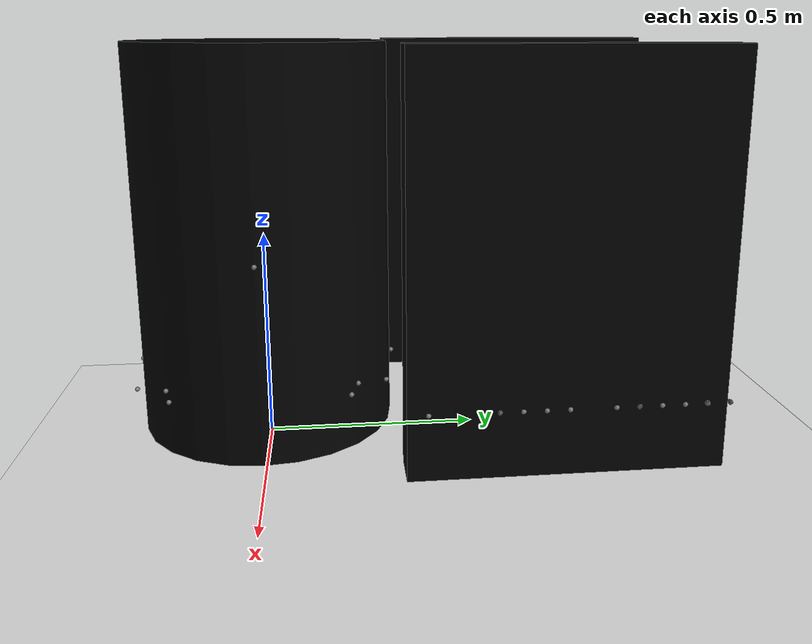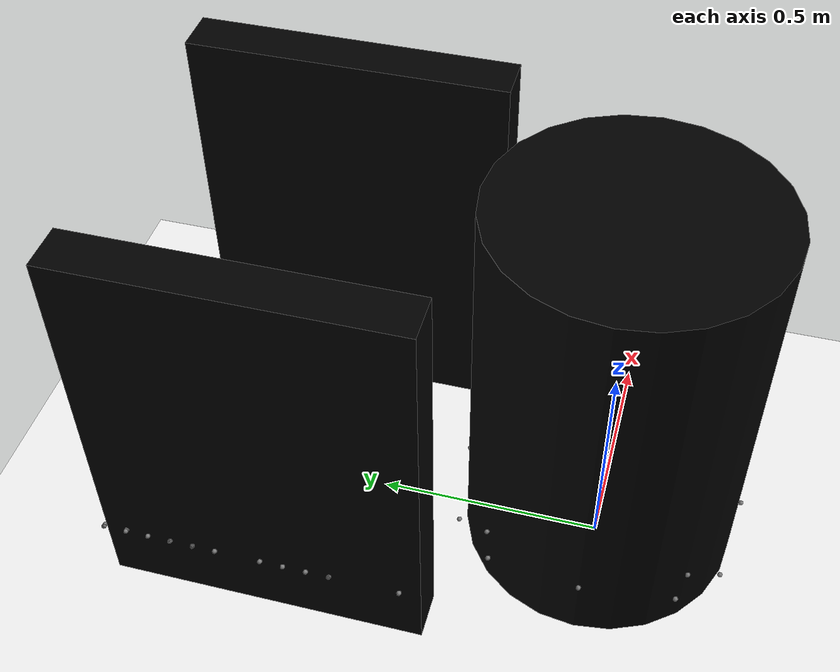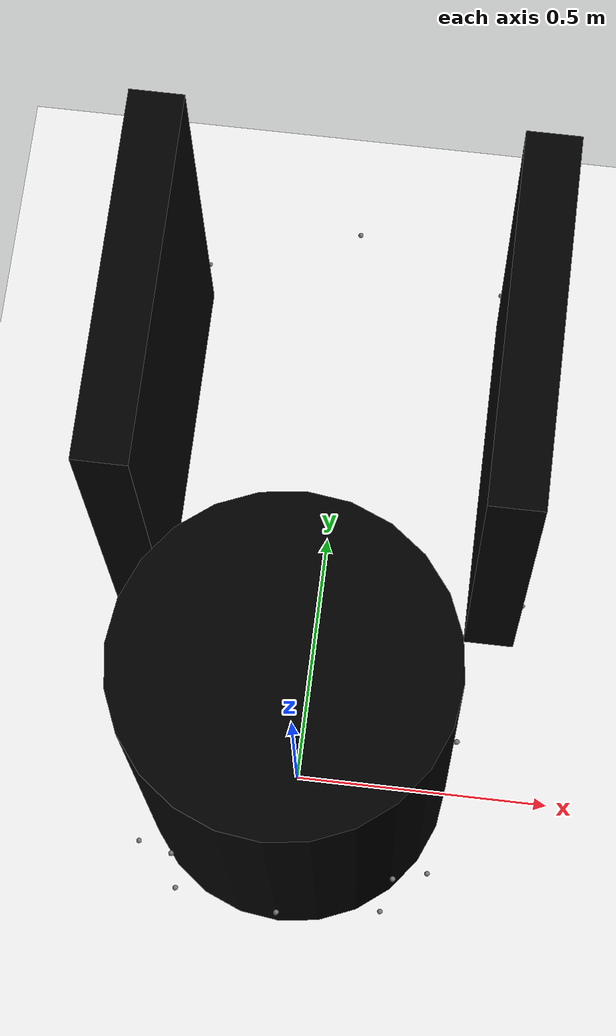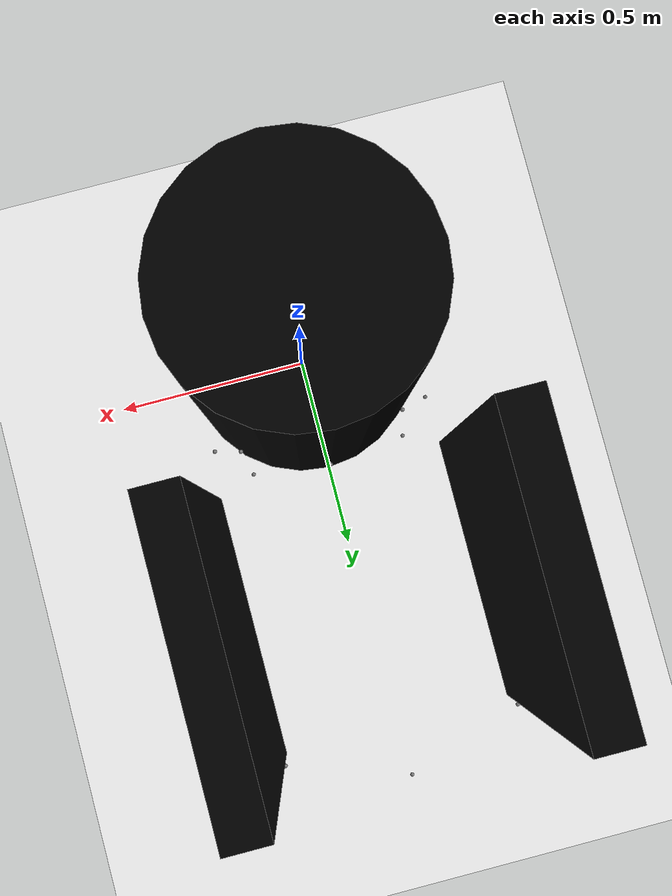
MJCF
<mujoco model="pr2_model">
    <worldbody name="base">
        <geom name="ground_plane" type="plane" pos="0 0 -0.1" size="20 20 .05" rgba="1. 1. 1. 0.5" friction="1. 1. 1." />
        <camera name="overhead_camera" pos="0 0.0 25" quat="0.707 0 0 -0.707" />
        <body name="pr2" pos="0 0 0.5">
            <joint axis="1 0 0" name="robot_x" type="slide" pos="0 0 0" />
            <joint axis="0 1 0" name="robot_y" type="slide" pos="0 0 0" />
            <site name="body_1" pos="0.3 0 0" zaxis="1 0 0" />
            <site name="body_2" pos="0.276 0.195 -0.3" zaxis="0.924 0.0585 0" />
            <site name="body_3" pos="0.212 0.212 -0.3" zaxis="0.707 0.707 0" />
            <site name="body_4" pos="0.195 0.276 -0.3" zaxis="0.0585 0.924 0" />

            <site name="body_5" pos="0 0.3 -0.3" zaxis="0 1 0"/>
            <site name="body_6" pos="-0.195 0.276 -0.30" zaxis="-0.0585 0.924 0"/>
            <site name="body_7" pos="-0.212 0.212 -0.30" zaxis="-0.707 0.707 0"/>
            <site name="body_8" pos="-0.276 0.195 -0.30" zaxis="-0.924 0.0585 0"/>

            <site name="body_9" pos="-0.3 0 -0.3" zaxis="-1 0 0"/>
            <site name="body_10" pos="-0.276 -0.195 -0.30" zaxis="-0.924 -0.0585 0"/>
            <site name="body_11" pos="-0.212 -0.212 -0.30" zaxis="-0.707 -0.707 0"/>
            <site name="body_12" pos="-0.195 -0.276 -0.30" zaxis="-0.0585 -0.924 0"/>

            <site name="body_13" pos="0 -0.3 -0.3" zaxis="0 -1 0"/>
            <site name="body_14" pos="0.195 -0.276 -0.3" zaxis="0.0585 -0.924 0"/>
            <site name="body_15" pos="0.212 -0.212 -0.3" zaxis="0.707 -0.707 0"/>
            <site name="body_16" pos="0.276 -0.195 -0.3" zaxis="0.924 -0.0585 0"/>

            <site name="body_17" pos="0 1.1 -0.3" zaxis="0 1 0"/>

            <geom name="pr2" type="cylinder" size="0.295 0.45" mass="5" rgba="0 0 0 1"/>
            <joint axis="0 0 1" name="robot_theta" type="hinge" pos="0 0 0" limited="false"/>
            <body name="right_finger" pos="-0.35 0.65 0" euler="0 0 -0.05">
                <site name="rf_1" pos="0. 0.35 -0.3" zaxis="0 1 0"/>
                <site name="rf_2" pos="-0.05 0.35 -0.3" zaxis="-1 1 0"/>
                <site name="rf_3" pos="-0.055 0.15 -0.3" zaxis="-1 0 0"/>
                <site name="rf_4" pos="-0.055 -0.15 -0.3" zaxis="-1 0 0"/>
                <site name="rf_5" pos="0.05 0.35 -0.3" zaxis="1 1 0"/>
                <site name="rf_6" pos="-0.055 0 -0.3" zaxis="-1 0 0"/>
                <site name="rf_7" pos="0 0.35 -0.3" zaxis="1 2 0"/>
                <site name="rf_8" pos="-0.055 0.1 -0.3" zaxis="-1 0.5 0"/>
                <site name="rf_9" pos="-0.05 0.3 -0.3" zaxis="-1 0.5 0"/>
                <site name="rf_10" pos="-0.055 -0.3 -0.3" zaxis="-1 0 0"/>
                <site name="rf_11" pos="-0.055  0.3 -0.3" zaxis="-1 0 0"/>
                <site name="rf_12" pos="-0.055 -0.1 -0.3" zaxis="-1 2 0"/>
                <site name="rf_13" pos="-0.055 0.2 -0.3" zaxis="-1 2 0"/>
                <site name="rf_14" pos="-0.055 0.35 -0.3" zaxis="-3 1 0"/>
                <site name="rf_15" pos="-0.055 0.35 -0.3" zaxis="-1 3 0"/>
                <site name="rf_16" pos="-0.055 0.25 -0.3" zaxis="-2 1 0"/>
                <site name="rf_17" pos="-0.055 0.2 -0.3" zaxis="-2 1 0"/>
                <site name="rf_18" pos="-0.055 0.15 -0.3" zaxis="-2 1 0"/>
                <site name="rf_19" pos="-0.055 -0.05 -0.3" zaxis="-2 1 0"/>
                <site name="rf_20" pos="-0.055 -0.15 -0.3" zaxis="-2 1 0"/>
                <site name="rf_21" pos="-0.055 0.15 -0.3" zaxis="-1 1 0"/>
                <site name="rf_22" pos="-0.055 0.35 -0.3" zaxis="-2 1 0"/>
                <site name="rf_23" pos="0. 0.35 -0.3" zaxis="1 2 0"/>
                <site name="rf_24" pos="0. 0.35 -0.3" zaxis="-1 2 0"/>
                <site name="rf_25" pos="0. 0.35 -0.3" zaxis="2 1 0"/>
                <site name="rf_26" pos="0. 0.35 -0.3" zaxis="-2 1 0"/>
                <joint name="right_finger_joint" axis="1 0 0" limited="true" range="-0.1 0.1" type="slide" solreflimit="0.02 0.25" solimplimit="0.99 1. 0.0001" pos="0 0 0" margin="0.02" />
                <geom pos="0 0 0" size="0.05 0.345 0.45" type="box" mass="1" friction="1.9 0.95 0.0005" rgba="0 0 0 1"/>
            </body>
            <body name="left_finger" pos="0.35 0.65 0" euler="0 0 0.05">
                <site name="lf_1" pos="0. 0.35 -0.3" zaxis="0 1 0"/>
                <site name="lf_2" pos="0.05 0.35 -0.3" zaxis="1 1 0"/>
                <site name="lf_3" pos="0.055 0.15 -0.3" zaxis="1 0 0"/>
                <site name="lf_4" pos="0.055 -0.15 -0.3" zaxis="1 0 0"/>
                <site name="lf_5" pos="-0.05 0.35 -0.3" zaxis="-1 1 0"/>
                <site name="lf_6" pos="0.055 0 -0.3" zaxis="1 0 0"/>
                <site name="lf_7" pos="0. 0.35 -0.3" zaxis="-1 2 0"/>
                <site name="lf_8" pos="0.055 0.1 -0.3" zaxis="1 0.5 0"/>
                <site name="lf_9" pos="0.05 0.3 -0.3" zaxis="1 0.5 0"/>
                <site name="lf_10" pos="0.055 -0.3 -0.3" zaxis="1 0 0"/>
                <site name="lf_11" pos="0.055  0.3 -0.3" zaxis="1 0 0"/>
                <site name="lf_12" pos="0.055 -0.1 -0.3" zaxis="1 2 0"/>
                <site name="lf_13" pos="0.055 0.3 -0.3" zaxis="1 2 0"/>
                <site name="lf_14" pos="0.055 0.35 -0.3" zaxis="3 1 0"/>
                <site name="lf_15" pos="0.055 0.35 -0.3" zaxis="1 3 0"/>
                <site name="lf_16" pos="0.055 0.25 -0.3" zaxis="2 1 0"/>
                <site name="lf_17" pos="0.055 0.2 -0.3" zaxis="2 1 0"/>
                <site name="lf_18" pos="0.055 0.15 -0.3" zaxis="2 1 0"/>
                <site name="lf_19" pos="0.055 -0.05 -0.3" zaxis="2 1 0"/>
                <site name="lf_20" pos="0.055 -0.15 -0.3" zaxis="2 1 0"/>
                <site name="lf_21" pos="0.055 0.15 -0.3" zaxis="1 1 0"/>
                <site name="lf_22" pos="0.055 0.35 -0.3" zaxis="2 1 0"/>
                <site name="lf_23" pos="0. 0.35 -0.3" zaxis="-1 2 0"/>
                <site name="lf_24" pos="0. 0.35 -0.3" zaxis="1 2 0"/>
                <site name="lf_25" pos="0. 0.35 -0.3" zaxis="-2 1 0"/>
                <site name="lf_26" pos="0. 0.35 -0.3" zaxis="2 1 0"/>
                <joint name="left_finger_joint" axis="-1 0 0" limited="true" range="-0.1 0.1" type="slide" solreflimit="0.02 0.25" solimplimit="0.99 1. 0.0001" pos="0 0 0" margin="0.02" />
                <geom pos="0 0 0" size="0.05 0.345 0.45" type="box" mass="1" friction="1.9 0.95 0.0005" rgba="0 0 0 1"/>
            </body>
        </body>
    </worldbody>

    <actuator>
        <velocity kv="500" joint="robot_x" name="robot_x" ctrllimited="true" ctrlrange="-20 20" />
        <velocity kv="500" joint="robot_y" name="robot_y" ctrllimited="true" ctrlrange="-20 20" />
        <velocity kv="100" joint="robot_theta" name="robot_theta" ctrllimited="true" ctrlrange="-20 20" />
        <motor gear="50" joint="left_finger_joint" name="left_grip" ctrllimited="true" ctrlrange="-50 500" />
        <motor gear="50" joint="right_finger_joint" name="right_grip" ctrllimited="true" ctrlrange="-50 500" />
    </actuator>

    <sensor>
        <rangefinder name="lidar_1" site="body_1" cutoff="2.5" />
        <rangefinder name="lidar_2" site="body_2" cutoff="2.5" />
        <rangefinder name="lidar_3" site="body_3" cutoff="2.5" />
        <rangefinder name="lidar_4" site="body_4" cutoff="4.5" />
        <rangefinder name="lidar_5" site="body_5" cutoff="2.5" />
        <rangefinder name="lidar_6" site="body_6" cutoff="2.6" />
        <rangefinder name="lidar_7" site="body_7" cutoff="2.5" />
        <rangefinder name="lidar_8" site="body_8" cutoff="2.5" />
        <rangefinder name="lidar_9" site="body_9" cutoff="2.5" />
        <rangefinder name="lidar_10" site="body_10" cutoff="2.5" />
        <rangefinder name="lidar_11" site="body_11" cutoff="2.5" />
        <rangefinder name="lidar_12" site="body_12" cutoff="2.5" />
        <rangefinder name="lidar_13" site="body_13" cutoff="2.5" />
        <rangefinder name="lidar_14" site="body_14" cutoff="2.5" />
        <rangefinder name="lidar_15" site="body_15" cutoff="2.5" />
        <rangefinder name="lidar_16" site="body_16" cutoff="2.5" />

        <rangefinder name="llidar_1" site="lf_1" cutoff="2.5" />
        <rangefinder name="llidar_2" site="lf_2" cutoff="2.5" />
        <rangefinder name="llidar_3" site="lf_3" cutoff="2.5" />
        <rangefinder name="llidar_4" site="lf_4" cutoff="2.5" />
        <rangefinder name="llidar_5" site="lf_5" cutoff="2.5" />
        <rangefinder name="llidar_6" site="lf_6" cutoff="2.5" />
        <rangefinder name="llidar_7" site="lf_7" cutoff="2.5" />
        <rangefinder name="llidar_8" site="lf_8" cutoff="2.5" />
        <rangefinder name="llidar_9" site="lf_9" cutoff="2.5" />
        <rangefinder name="llidar_10" site="lf_10" cutoff="2.5" />
        <rangefinder name="llidar_11" site="lf_11" cutoff="2.5" />
        <rangefinder name="llidar_12" site="lf_12" cutoff="2.5" />
        <rangefinder name="llidar_13" site="lf_13" cutoff="2.5" />
        <rangefinder name="llidar_14" site="lf_14" cutoff="2.5" />
        <rangefinder name="llidar_15" site="lf_15" cutoff="2.5" />
        <rangefinder name="llidar_16" site="lf_16" cutoff="2.5" />
        <rangefinder name="llidar_17" site="lf_17" cutoff="2.5" />
        <rangefinder name="llidar_18" site="lf_18" cutoff="2.5" />
        <rangefinder name="llidar_19" site="lf_19" cutoff="2.5" />
        <rangefinder name="llidar_20" site="lf_20" cutoff="2.5" />
        <rangefinder name="llidar_21" site="lf_21" cutoff="2.5" />
        <rangefinder name="llidar_22" site="lf_22" cutoff="2.5" />
        <rangefinder name="llidar_23" site="lf_23" cutoff="2.5" />
        <rangefinder name="llidar_24" site="lf_24" cutoff="2.5" />
        <rangefinder name="llidar_25" site="lf_25" cutoff="2.5" />
        <rangefinder name="llidar_26" site="lf_26" cutoff="2.5" />

        <rangefinder name="rlidar_1" site="rf_1" cutoff="2.5" />
        <rangefinder name="rlidar_2" site="rf_2" cutoff="2.5" />
        <rangefinder name="rlidar_3" site="rf_3" cutoff="2.5" />
        <rangefinder name="rlidar_4" site="rf_4" cutoff="2.5" />
        <rangefinder name="rlidar_5" site="rf_5" cutoff="2.5" />
        <rangefinder name="rlidar_6" site="rf_6" cutoff="2.5" />
        <rangefinder name="rlidar_7" site="rf_7" cutoff="2.5" />
        <rangefinder name="rlidar_8" site="rf_8" cutoff="2.5" />
        <rangefinder name="rlidar_9" site="rf_9" cutoff="2.5" />
        <rangefinder name="rlidar_10" site="rf_10" cutoff="2.5" />
        <rangefinder name="rlidar_11" site="rf_11" cutoff="2.5" />
        <rangefinder name="rlidar_12" site="rf_12" cutoff="2.5" />
        <rangefinder name="rlidar_13" site="rf_13" cutoff="2.5" />
        <rangefinder name="rlidar_14" site="rf_14" cutoff="2.5" />
        <rangefinder name="rlidar_15" site="rf_15" cutoff="2.5" />
        <rangefinder name="rlidar_16" site="rf_16" cutoff="2.5" />
        <rangefinder name="rlidar_17" site="rf_17" cutoff="2.5" />
        <rangefinder name="rlidar_18" site="rf_18" cutoff="2.5" />
        <rangefinder name="rlidar_19" site="rf_19" cutoff="2.5" />
        <rangefinder name="rlidar_20" site="rf_20" cutoff="2.5" />
        <rangefinder name="rlidar_21" site="rf_21" cutoff="2.5" />
        <rangefinder name="rlidar_22" site="rf_22" cutoff="2.5" />
        <rangefinder name="rlidar_23" site="rf_23" cutoff="2.5" />
        <rangefinder name="rlidar_24" site="rf_24" cutoff="2.5" />
        <rangefinder name="rlidar_25" site="rf_25" cutoff="2.5" />
        <rangefinder name="rlidar_26" site="rf_26" cutoff="2.5" />

        <rangefinder name="far_forward" site="body_17" cutoff="2.5" />
    </sensor>
</mujoco>
